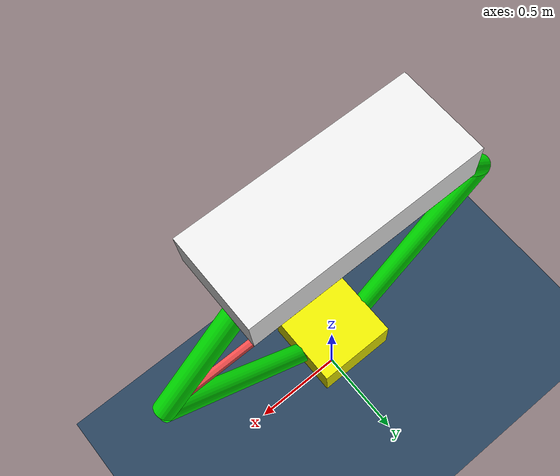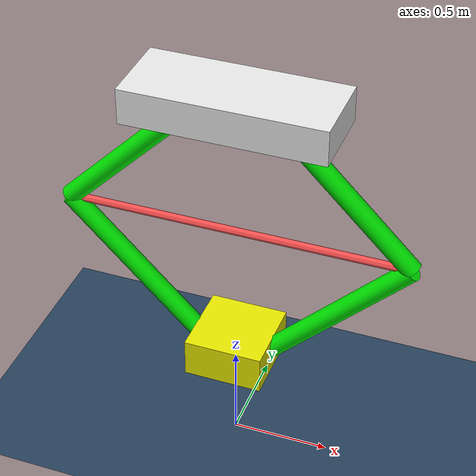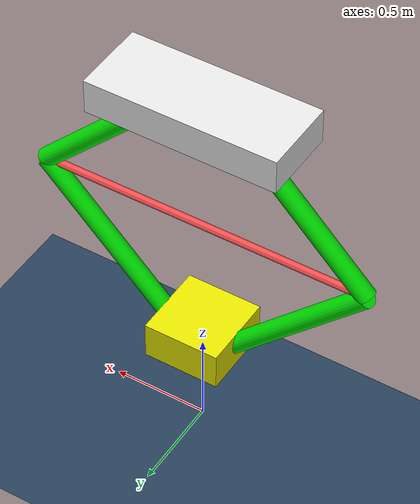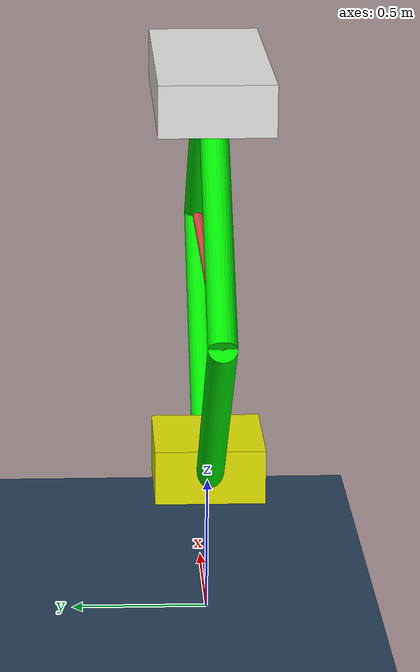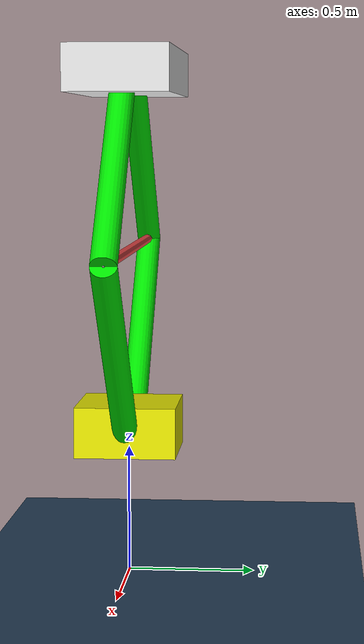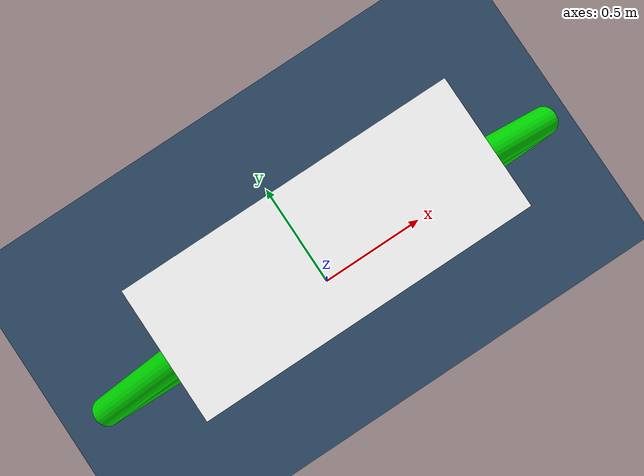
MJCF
<mujoco>
	<!-- 侧杆较长 -->
	<option timestep="0.0001" integrator="RK4" gravity="0 0 -10">
		<flag sensornoise="enable" contact="enable" energy="enable" />
	</option>

	<visual>
		<headlight diffuse="0.6 0.6 0.6" ambient="0.3 0.3 0.3" specular="0 0 0" />
		<rgba haze="0.15 0.25 0.35 1" />
		<global azimuth="150" elevation="-20" />
	</visual>

	<asset>
		<texture type="skybox" builtin="gradient" rgb1="0.3 0.5 0.7" rgb2="0 0 0" width="512"
			height="3072" />
		<texture type="2d" name="groundplane" builtin="checker" mark="edge" rgb1="0.2 0.3 0.4"
			rgb2="0.1 0.2 0.3"
			markrgb="0.8 0.8 0.8" width="300" height="300" />
		<material name="groundplane" texture="groundplane" texuniform="true" texrepeat="5 5"
			reflectance="0.2" />
	</asset>

	<default>
		<equality solref="0.005 1" />
	</default>

	<worldbody>
		<light pos="0 0 3" dir="0 0 -1" directional="false" />
		<light diffuse=".5 .5 .5" pos="0 0 3" dir="0 0 -1" />
		<geom name="floor" size="0 0 .125" type="plane" material="groundplane" conaffinity="15"
			condim="3" />
		<body name="hopper" pos="0 0 2">
			<freejoint/>
			<geom type="box" size=".5 .2 .09" rgba=".9 .9 .9 1" mass="0.333" />
			<site name="imu" size="0.01" pos="0 0 0" />

			<body name="thigh_left" pos="-0.5202 0 -0.3536" euler="0 45 0">
				<joint name="hip_left" type="hinge" pos="0 0 0.5" axis="0 -1 0" range="-45 90"
					limited="true" />
				<geom type="cylinder" size=".05 .5" rgba="0 .9 0 1" mass="1" />
				<site name="s_left" pos="0 0 -0.5" />
				<body name="leg_left" pos="0.5 0 -0.5" euler="0 -90 0">
					<joint name="knee_left" type="hinge" pos="0 0 0.5" axis="0 -1 0" />
					<geom type="cylinder" size=".05 .5" rgba="0 .9 0 1" mass="1" />
				</body>
			</body>
			<body name="thigh_right" pos="0.5202 0 -0.3536" euler="0 -45 0">
				<joint name="hip_right" type="hinge" pos="0 0 0.5" axis="0 -1 0" range="-90 45"
					limited="true" />
				<geom type="cylinder" size=".05 .5" rgba="0 .9 0 1" mass="1" />
				<site name="s_right" pos="0 0 -0.5" />
				<body name="leg_right" pos="-0.5 0 -0.5" euler="0 90 0">
					<joint name="knee_right" type="hinge" pos="0 0 0.5" axis="0 -1 0" />
					<geom type="cylinder" size=".05 .5" rgba="0 .9 0 1" mass="1" />
				</body>
			</body>
		</body>
		<body name="foot" pos="0 0 0.5858">
			<freejoint />
			<geom type="box" size=".2 .2 .1" rgba=".9 .9 .0 1" mass="0.333" />
			<site name="foot_ground" pos="0 0 0" />
		</body>
	</worldbody>

	<contact>
		<exclude name="e0" body1="hopper" body2="thigh_left" />
		<exclude name="e1" body1="hopper" body2="thigh_right" />
		<exclude name="e2" body1="thigh_left" body2="leg_left" />
		<exclude name="e3" body1="thigh_right" body2="leg_right" />
		<exclude name="e4" body1="leg_left" body2="foot" />
		<exclude name="e5" body1="leg_right" body2="foot" />
	</contact>

	<equality>
		<connect name="c1" body1="leg_left" body2="foot" anchor="0 0 -0.5" />
		<connect name="c2" body1="leg_right" body2="foot" anchor="0 0 -0.5" />
	</equality>

	<tendon>
		<spatial name='tendon1' range="0.01 10" limited="true" width=".02" rgba=".95 .3 .3 1"
			stiffness="100" damping=".1" springlength="1">
			<site site="s_left" />
			<site site="s_right" />
		</spatial>
	</tendon>

	<actuator>
		<position name="pservo_hip_left" joint="hip_left" kp="0" />
		<velocity name="vservo_hip_left" joint="hip_left" kv="0" />
		<position name="pservo_hip_right" joint="hip_right" kp="0" />
		<velocity name="vservo_hip_right" joint="hip_right" kv="0" />
	</actuator>

	<sensor>
		<jointpos name="hip_pos_sensor" joint="hip_left" noise="0" />
		<jointvel name="hip_vel_sensor" joint="hip_left" noise="0" />
		<accelerometer name="acceleration_sensor" site="imu" />
		<velocimeter name="velocity_sensor" site="imu" />
		<force name="ground_force_sensor" site="foot_ground" />
	</sensor>

</mujoco>
